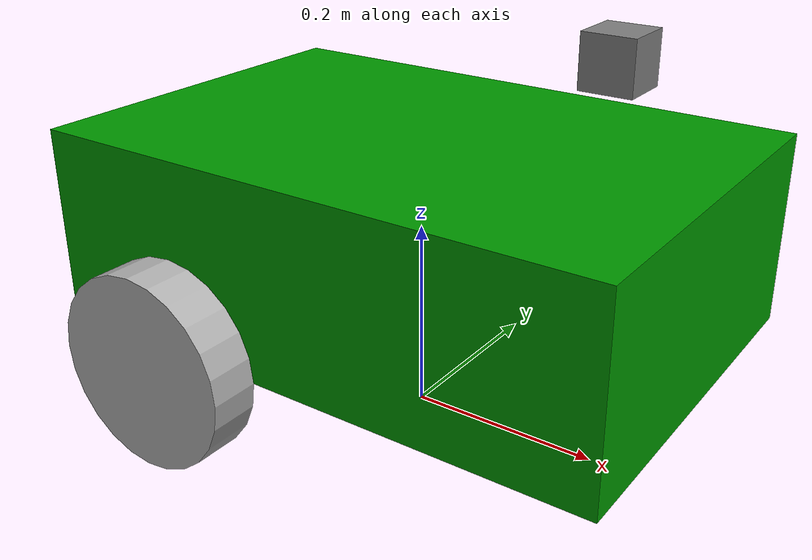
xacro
<?xml version="1.0"?>
<robot name="my_robot" xmlns:xacro="http://www.ros.org/wiki/xacro">
    <xacro:include filename="common_properties.xacro" />
    <xacro:include filename="mobile_base.xacro" />
    <xacro:include filename="$(find my_robot_description)/urdf/mobile_base_gazebo.xacro" />

</robot>

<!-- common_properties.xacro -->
<robot xmlns:xacro="http://www.ros.org/wiki/xacro">
<material name="green">
        <color rgba="0 0.6 0 1" />
    </material>
<material name="gray">
    <color rgba="0.7 0.7 0.7 1" />
</material>
<xacro:macro name="box_inertia" params="m x y z o_xyz o_rpy">
    <inertial>
        <mass value="${m}" />
        <origin xyz="${o_xyz}" rpy="${o_rpy}" />
        <inertia ixx="${(m/12) * (z*z + y*y)}" ixy="0" ixz="0"
                 iyy="${(m/12) * (x*x + z*z)}" iyz="0"
                 izz="${(m/12) * (x*x + y*y)}" />
    </inertial>
</xacro:macro>
<xacro:macro name="cylinder_inertia" params="m r l o_xyz o_rpy">
    <inertial>
        <mass value="${m}" />
        <origin xyz="${o_xyz}" rpy="${o_rpy}" />
        <inertia ixx="${(m/12) * (3*r*r + l*l)}" ixy="0" ixz="0"
                 iyy="${(m/12) * (3*r*r + l*l)}" iyz="0"
                 izz="${(m/2) * (r*r)}" />
    </inertial>
</xacro:macro>
<xacro:macro name="sphere_inertia" params="m r o_xyz o_rpy">
    <inertial>
        <mass value="${m}" />
        <origin xyz="${o_xyz}" rpy="${o_rpy}" />
        <inertia ixx="${(2/5) * m * r * r}" ixy="0" ixz="0"
                 iyy="${(2/5) * m * r * r}" iyz="0"
                 izz="${(2/5) * m * r * r}" />
    </inertial>
</xacro:macro>
</robot>

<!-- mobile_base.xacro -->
<robot xmlns:xacro="http://www.ros.org/wiki/xacro">
<xacro:property name="base_length" value="0.6" />
<xacro:property name="base_width" value="0.4" />
<xacro:property name="base_height" value="0.2" />
<xacro:property name="wheel_radius" value="0.1" />
<xacro:property name="wheel_length" value="0.05" />

<xacro:macro name="wheel_link" params="prefix">
    <link name="${prefix}_wheel_link">
        <visual>
            <geometry>
                <cylinder radius="${wheel_radius}"
                          length="${wheel_length}" />
            </geometry>
            <origin xyz="0 0 0" rpy="${pi / 2.0} 0 0" />
            <material name="gray" />
        </visual>
        <collision>
    <geometry>
        <sphere radius="${wheel_radius}" />
    </geometry>
    <origin xyz="0 0 0" rpy="0 0 0" />
</collision>
        <xacro:cylinder_inertia m="1.0" r="${wheel_radius}" l="${wheel_length}" o_xyz="0 0 0" o_rpy="${pi / 2.0} 0 0" />

    </link>
</xacro:macro>
<link name="base_link">
        <visual>
            <geometry>
                <box size="${base_length} ${base_width} ${base_height}" />
            </geometry>
<origin xyz="0 0 ${base_height / 2.0}" rpy="0 0 0" />
            <material name="green" />
        </visual>
        <collision>
    <geometry>
        <box size="${base_length} ${base_width} ${base_height}" />
    </geometry>
    <origin xyz="0 0 ${base_height / 2.0}" rpy="0 0 0" />
</collision>
        <xacro:box_inertia m="5.0" x="${base_length}" y="${base_width}" z="${base_height}" o_xyz="0 0 ${base_height / 2.0}" o_rpy="0 0 0" />

    </link>

    <link name="caster_wheel_link">
    <visual>
        <geometry>
            <sphere radius="${wheel_radius / 2.0}" />
        </geometry>
<origin xyz="0 0 0" rpy="0 0 0" />
        <material name="gray" />
    </visual>
    <collision>
    <geometry>
        <sphere radius="${wheel_radius / 2.0}" />
    </geometry>
    <origin xyz="0 0 0" rpy="0 0 0" />
</collision>
    <xacro:sphere_inertia m="0.5" r="${wheel_radius / 2.0}"
    o_xyz="0 0 0" o_rpy="0 0 0" />
</link>
<xacro:wheel_link prefix="right" />
<xacro:wheel_link prefix="left" />
<link name="base_footprint" />
<joint name="base_right_wheel_joint" type="continuous">
    <parent link="base_link" />
    <child link="right_wheel_link" />
    <origin xyz="${-base_length / 4.0} ${-(base_width + wheel_length) / 2.0} 0" rpy="0 0 0" />
    <axis xyz="0 1 0" />
</joint>
<joint name="base_left_wheel_joint" type="continuous">
    <parent link="base_link" />
    <child link="left_wheel_link" />
    <origin xyz="${-base_length / 4.0} ${(base_width + wheel_length) / 2.0} 0" rpy="0 0 0" />

    <axis xyz="0 1 0" />
</joint>
<joint name="base_caster_wheel_joint" type="fixed">
    <parent link="base_link" />
    <child link="caster_wheel_link" />
    <origin xyz="${base_length / 3.0} 0 ${-wheel_radius / 2.0}" rpy="0 0 0" />
</joint>
<joint name="base_joint" type="fixed">
    <parent link="base_footprint" />
    <child link="base_link" />
    <origin xyz="0 0 ${wheel_radius}" rpy="0 0 0" />
</joint>

<link name="camera_link">
  <visual>
    <origin xyz="0 0 0" rpy="0 0 0"/>
    <geometry>
      <box size="0.05 0.05 0.05"/>
    </geometry>

    <material name="gray">
      <color rgba="0.5 0.5 0.5 1.0"/>
    </material>
  </visual>

  <inertial>
    <mass value="0.1"/>
    <origin xyz="0 0 0" rpy="0 0 0"/>
    <inertia ixx="0.0001" ixy="0" ixz="0"
             iyy="0.0001" iyz="0"
             izz="0.0001"/>
  </inertial>
</link>

<joint name="camera_joint" type="fixed">
  <parent link="base_link"/>
  <child link="camera_link"/>
  <origin xyz="0.2 0 0.3" rpy="0 0 0"/>
</joint>

</robot>
